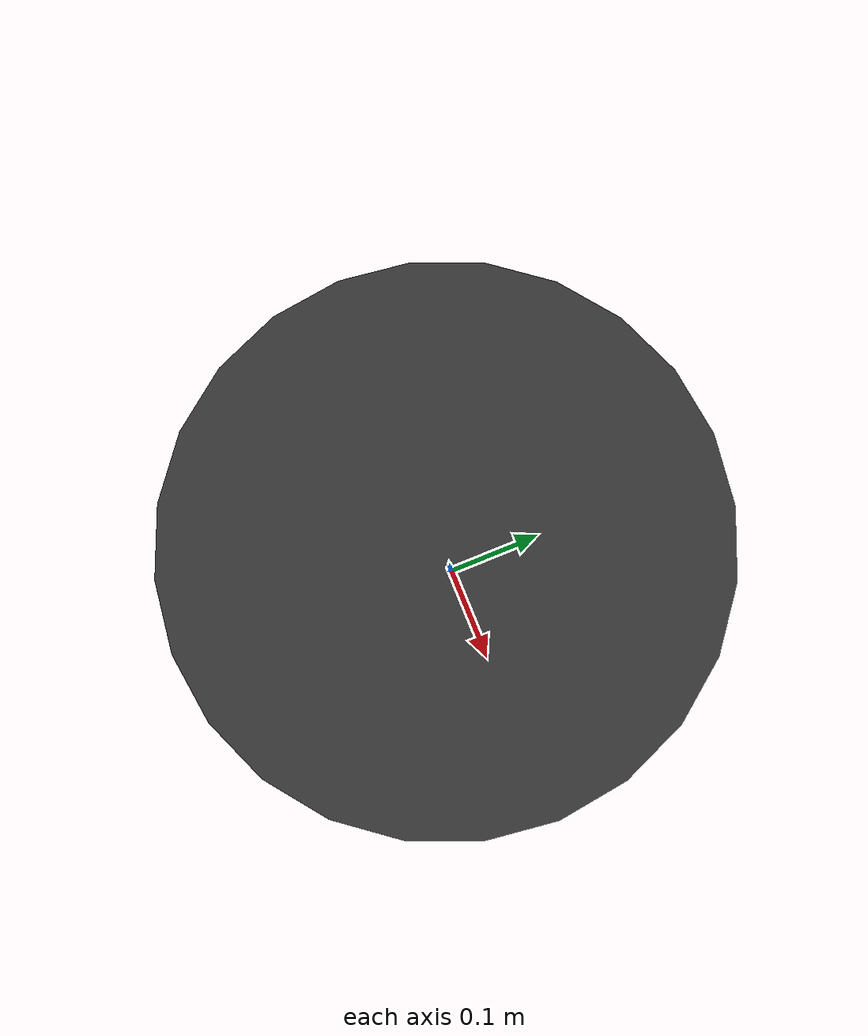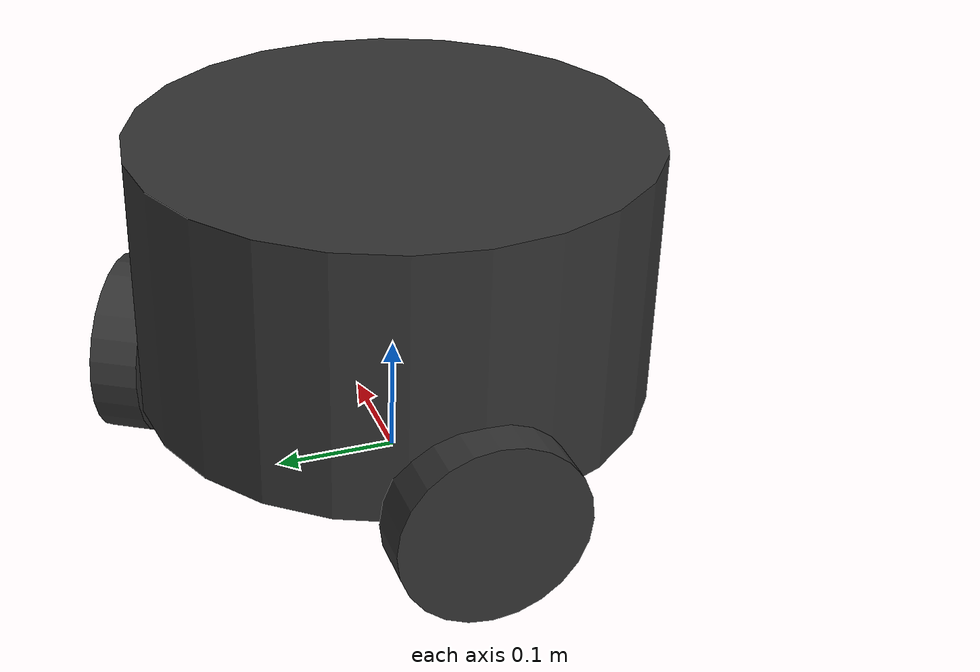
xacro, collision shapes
<?xml version="1.0"?>
<robot name="justina" xmlns:xacro="http://www.ros.org/wiki/xacro">
	<xacro:include filename="$(find knowledge)/hardware/justina.gazebo" />
	<!-- Import Rviz colors -->
	<xacro:include filename="$(find knowledge)/hardware/materials.xacro" />
	<xacro:include filename="$(find knowledge)/hardware/macros.xacro" />
	<xacro:include filename="$(find pincher_arm_description)/urdf/arm_hardware.xacro"/>

	<material name="White">
    	<color rgba="0.87 0.90 0.87 1.0"/>
  	</material>
  	<material name="Black">
    	<color rgba="0.08 0.08 0.08 1.0"/>
  	</material>
  	<material name="Gray">
    	<color rgba="0.2 0.2 0.21 1.0"/>
  	</material>
  	<material name="Green">
    	<color rgba="0.22 0.32 0.14 1.0"/>
  	</material>

	<xacro:property name="base_radius" value="0.21"/>
	<xacro:property name="base_height" value="0.2156"/>
	<xacro:property name="base_mass" value="2.0"/>
	<xacro:property name="wheel_radius" value="0.075"/>
	<xacro:property name="wheel_height" value="0.04"/>
	<xacro:property name="wheel_mass" value="0.52098"/>

	<link name="base_link"/>

	<joint name="hex_base_connect" type="fixed">
		<origin xyz="0 0 0" rpy="0 0 0" />
		<parent link="base_link"/>
		<child link="hex_base_link" />
	</joint>

	<link name="hex_base_link">
		<visual>
			<origin xyz="0.0 0.0 0.075" rpy="0.0 0 1.5708"/>
			<!-- origin xyz="0 0 0.1828" rpy="0 0 0"/ -->
			<geometry>
				<mesh filename="package://knowledge/hardware/stl/base/baseHex.dae"/>
				<!-- cylinder length="${base_height}" radius="${base_radius}"/ -->
			</geometry>
			<material name="grey"/>
		</visual>
		<collision>
			<origin xyz="0 0 0.1828" rpy="0 0 0"/>
			<geometry><cylinder length="${base_height}" radius="${base_radius}"/></geometry>
		</collision>
		<inertial>
			<origin xyz="0 0 0.1828" rpy="0 0 0"/>
			<mass value="${base_mass}"/>
			<xacro:cylinder_inertia m="${base_mass}" r="${base_radius}" h="${base_height}"/>
		</inertial>
	</link>
	<joint name="wheel_front_left_connect" type="continuous">
		<origin xyz="0.1091 0.189 0.075" rpy="1.57078 0 -3.67"/>
		<parent link="hex_base_link"/>
		<child link="wheel_front_left"/>
		<axis xyz="0 0 1"/>
	</joint>

	<link name="wheel_front_left">
		<visual>
			<origin xyz="0 0 0" rpy="0 3.1416 0"/>
			<geometry>
				<mesh filename="package://knowledge/hardware/stl/base/rueda.dae"/>
				<!-- cylinder length="${wheel_height}" radius="${wheel_radius}"/ -->
			</geometry>
			<material name="grey"/>
		</visual>
		<collision>
			<origin xyz="0 0 0" rpy="0 0 0"/>
			<geometry><cylinder length="${wheel_height}" radius="${wheel_radius}"/></geometry>
		</collision>
		<inertial>
			<origin xyz="0 0 0"/>
			<mass value="${wheel_mass}"/>
			<xacro:cylinder_inertia m="${wheel_mass}" r="${wheel_radius}" h="${wheel_height}"/>
		</inertial>
	</link>

	<joint name="wheel_back_connect" type="continuous">
		<origin xyz="-0.2182 0 0.075" rpy="1.57078 0 -1.5708"/>
		<parent link="hex_base_link"/>
		<child link="wheel_back"/>
		<axis xyz="0 0 1"/>
	</joint>

	<link name="wheel_back">
		<visual>
			<origin xyz="0 0 0" rpy="0 3.1416 0"/>
			<geometry>
				<mesh filename="package://knowledge/hardware/stl/base/rueda.dae"/>
				<!-- cylinder length="${wheel_height}" radius="${wheel_radius}"/ -->
			</geometry>
			<material name="grey"/>
		</visual>
		<collision>
			<origin xyz="0 0 0" rpy="0 0 0"/>
			<geometry><cylinder length="${wheel_height}" radius="${wheel_radius}"/></geometry>
		</collision>
		<inertial>
			<origin xyz="0 0 0" rpy="0 0 0"/>
			<mass value="${wheel_mass}"/>
			<xacro:cylinder_inertia m="${wheel_mass}" r="${wheel_radius}" h="${wheel_height}"/>
		</inertial>
	</link>

	<joint name="wheel_front_right_connect" type="continuous">
		<origin xyz="0.1091 -0.189 0.075" rpy="1.57078 0 3.67"/>
		<parent link="hex_base_link"/>
		<child link="wheel_front_right"/>
		<axis xyz="0 0 1"/>
	</joint>

	<link name="wheel_front_right">
		<visual>
			<origin xyz="0 0 0" rpy="0 0 0"/>
			<geometry>
				<mesh filename="package://knowledge/hardware/stl/base/rueda.dae"/>
				<!-- cylinder length="${wheel_height}" radius="${wheel_radius}"/ -->
			</geometry>
			<material name="grey"/>
		</visual>
		<collision>
			<origin xyz="0 0 0" rpy="0 0 0"/>
			<geometry><cylinder length="${wheel_height}" radius="${wheel_radius}"/></geometry>
		</collision>
		<inertial>
			<origin xyz="0 0 0" rpy="0 0 0"/>
			<mass value="${wheel_mass}"/>
			<xacro:cylinder_inertia m="${wheel_mass}" r="${wheel_radius}" h="${wheel_height}"/>
		</inertial>
	</link>

<xacro:macro name="pincher_arm" params="
      color:=Gray
      joints_vlimit:=1.571
      pan_llimit:=-2.617
      pan_ulimit:=2.617
      shoulder_llimit:=-2.09
      shoulder_ulimit:=2.09
      elbow_llimit:=-2.42
      elbow_ulimit:=2.42
      wrist_llimit:=-1.71
      wrist_ulimit:=1.79
      gripper_llimit:=-2.6
      gripper_ulimit:=0.0">

    <link name="arm_base_link"/>
    <joint name="base_to_arm" type="fixed">
	    <parent link="hex_base_link"/>
	    <child link="arm_base_link"/>
	    <origin rpy="0 0 0" xyz="0.15 0.0 0.97"/>
  	</joint>

    <!-- shoulder pan joint -->
    <xacro:dynamixel_AX12_fixed parent="arm_base_link" name="arm_shoulder_pan_servo">
      <origin xyz="0 0 0" rpy="${pi/2} 0 ${pi/2}"/>
    </xacro:dynamixel_AX12_fixed>

    <xacro:bioloid_F3_revolute parent="arm_shoulder_pan_servo_link" name="arm_shoulder_pan" color="${color}"
                               vlimit="${joints_vlimit}" llimit="${pan_llimit}" ulimit="${pan_ulimit}">
      <origin xyz="0 ${AX12_WIDTH/2} 0" rpy="${-pi/2} ${pi/2} ${pi}"/>
    </xacro:bioloid_F3_revolute>

    <!-- shoulder lift joint -->
    <xacro:dynamixel_AX12_fixed parent="arm_shoulder_pan_link" name="arm_shoulder_lift_servo">
      <origin xyz="0 0 ${-AX12_HEIGHT-F10_HEIGHT+0.001}" rpy="0 ${pi} 0"/>
    </xacro:dynamixel_AX12_fixed>

    <xacro:bioloid_F4_revolute parent="arm_shoulder_lift_servo_link" name="arm_shoulder_lift" color="${color}"
                               vlimit="${joints_vlimit}" llimit="${shoulder_llimit}" ulimit="${shoulder_ulimit}">
      <origin xyz="0 0 0" rpy="0 0 0"/>
    </xacro:bioloid_F4_revolute>

    <xacro:bioloid_F10_fixed parent="arm_shoulder_lift_link" name="arm_shoulder_F10_0" color="${color}">
      <origin xyz="0 0 ${F4_HEIGHT+F10_HEIGHT/2}" rpy="0 0 0"/>
    </xacro:bioloid_F10_fixed>

    <xacro:bioloid_F10_fixed parent="arm_shoulder_F10_0_link" name="arm_shoulder_F10_1" color="${color}">
      <origin xyz="0 0 ${F10_HEIGHT}" rpy="0 0 0"/>
    </xacro:bioloid_F10_fixed>

    <xacro:bioloid_F10_fixed parent="arm_shoulder_F10_1_link" name="arm_shoulder_F10_2" color="${color}">
      <origin xyz="0 0 ${F10_HEIGHT}" rpy="0 0 0"/>
    </xacro:bioloid_F10_fixed>

    <xacro:bioloid_F3_fixed parent="arm_shoulder_F10_2_link" name="arm_shoulder_F3_0" color="${color}">
      <origin xyz="0 0 ${F10_HEIGHT/2}" rpy="0 ${pi} 0"/>
    </xacro:bioloid_F3_fixed>

    <!-- elbow joint -->
    <xacro:dynamixel_AX12_fixed parent="arm_shoulder_F3_0_link" name="arm_elbow_flex_servo">
      <origin xyz="0 0 ${-AX12_HEIGHT-F10_HEIGHT+0.001}" rpy="0 ${pi} 0"/>
    </xacro:dynamixel_AX12_fixed>

    <xacro:bioloid_F4_revolute parent="arm_elbow_flex_servo_link" name="arm_elbow_flex" color="${color}"
                               vlimit="${joints_vlimit}" llimit="${elbow_llimit}" ulimit="${elbow_ulimit}">
      <origin xyz="0 0 0" rpy="0 0 0"/>
    </xacro:bioloid_F4_revolute>

    <xacro:bioloid_F10_fixed parent="arm_elbow_flex_link" name="arm_elbow_F10_0" color="${color}">
      <origin xyz="0 0 ${F4_HEIGHT+F10_HEIGHT/2}" rpy="0 0 0"/>
    </xacro:bioloid_F10_fixed>

    <xacro:bioloid_F10_fixed parent="arm_elbow_F10_0_link" name="arm_elbow_F10_1" color="${color}">
      <origin xyz="0 0 ${F10_HEIGHT}" rpy="0 0 0"/>
    </xacro:bioloid_F10_fixed>

    <xacro:bioloid_F10_fixed parent="arm_elbow_F10_1_link" name="arm_elbow_F10_2" color="${color}">
      <origin xyz="0 0 ${F10_HEIGHT}" rpy="0 0 0"/>
    </xacro:bioloid_F10_fixed>

    <xacro:bioloid_F3_fixed parent="arm_elbow_F10_2_link" name="arm_elbow_F3_0" color="${color}">
      <origin xyz="0 0 ${F10_HEIGHT/2}" rpy="0 ${pi} 0"/>
    </xacro:bioloid_F3_fixed>

    <!-- wrist joint -->
    <xacro:dynamixel_AX12_fixed parent="arm_elbow_F3_0_link" name="arm_wrist_flex_servo">
      <origin xyz="0 0 ${-AX12_HEIGHT-F10_HEIGHT+0.001}" rpy="0 ${pi} 0"/>
    </xacro:dynamixel_AX12_fixed>

    <xacro:bioloid_F2_revolute parent="arm_wrist_flex_servo_link" name="arm_wrist_flex" color="${color}"
                               vlimit="${joints_vlimit}" llimit="${wrist_llimit}" ulimit="${wrist_ulimit}">
      <origin xyz="0 0 0" rpy="0 0 0"/>
    </xacro:bioloid_F2_revolute>

    <xacro:bioloid_F3_fixed parent="arm_wrist_flex_link" name="arm_wrist_F3_0" color="${color}">
      <origin xyz="0 0 ${F2_HEIGHT}" rpy="0 ${pi} ${-pi}"/>
    </xacro:bioloid_F3_fixed>

    <!-- gripper joint -->
    <xacro:dynamixel_AX12_fixed parent="arm_wrist_F3_0_link" name="gripper_servo" >
      <origin xyz="0 0 ${-AX12_WIDTH/2}" rpy="${pi/2} ${pi} ${pi/2}"/>
    </xacro:dynamixel_AX12_fixed>

    <xacro:gripper_finger_base parent="gripper_servo_link" name="gripper_finger_base" color="${color}">
      <origin xyz="0  ${AX12_WIDTH/2} 0" rpy="${pi} 0 ${pi/2}"/>
    </xacro:gripper_finger_base>

    <link name="gripper_active_link"/>
    <joint name="gripper_joint" type="revolute">
      <origin xyz="0 0 0" rpy="0 0 0"/>
      <axis xyz="1 0 0"/>
      <limit effort="30" velocity="${joints_vlimit}" lower="${gripper_llimit}" upper="${gripper_ulimit}"/>
      <parent link="gripper_finger_base_link"/>
      <child link="gripper_active_link"/>
    </joint>

    <!-- Finger 1 -->
    <xacro:pincher_finger name="gripper_finger1" color="${color}" >
      <origin xyz="0 0.0115 0" rpy="${pi/2} 0 ${pi/2}"/>
    </xacro:pincher_finger>

    <joint name="gripper_finger1_joint" type="prismatic">
      <origin xyz="0.019 0 0" rpy="0 0 0"/>
      <axis xyz="0 1 0"/>
      <limit effort="30" velocity="0.01" lower="0.001" upper="0.0158"/>
      <parent link="gripper_finger_base_link"/>
      <child link="gripper_finger1_link"/>
    </joint>

    <!-- Finger 2 -->
    <xacro:pincher_finger name="gripper_finger2" color="${color}" >
      <origin xyz="0 0.0115 0" rpy="${pi/2} 0 ${pi/2}"/>
    </xacro:pincher_finger>

    <joint name="gripper_finger2_joint" type="prismatic">
      <origin xyz="0.019 0 0" rpy="${pi} 0 0"/>
      <axis xyz="0 1 0"/>
      <limit effort="30" velocity="0.01" lower="0.001" upper="0.0158"/>
      <parent link="gripper_finger_base_link"/>
      <child link="gripper_finger2_link"/>
    </joint>

    <!-- fake gripper joint -->
    <link name="gripper_fake_link"/>
    <joint name="gripper_fake_joint" type="revolute">
      <origin xyz="0.02 0 0" rpy="0 0 0"/>
      <parent link="gripper_finger_base_link"/>
      <child link="gripper_fake_link"/>
      <limit effort="30" velocity="1" lower="-3.14" upper="3.14"/>
      <axis xyz="1 0 0"/>
    </joint>

  </xacro:macro>

</robot>

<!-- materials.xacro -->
<robot xmlns:xacro="http://www.ros.org/wiki/xacro">

	<material name="black">
		<color rgba="0.0 0.0 0.0 1.0"/>
	</material>

	<material name="blue">
		<color rgba="0.0 0.0 0.8 1.0"/>
	</material>

	<material name="green">
		<color rgba="0.0 0.8 0.0 1.0"/>
	</material>

	<material name="grey">
		<color rgba="0.2 0.2 0.2 1.0"/>
	</material>

	<material name="orange">
		<color rgba="${255/255} ${108/255} ${10/255} 1.0"/>
	</material>

	<material name="brown">
		<color rgba="${222/255} ${207/255} ${195/255} 1.0"/>
	</material>

	<material name="red">
		<color rgba="0.8 0.0 0.0 1.0"/>
	</material>

	<material name="white">
		<color rgba="1.0 1.0 1.0 1.0"/>
	</material>

</robot>

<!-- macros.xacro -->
<robot xmlns:xacro="http://www.ros.org/wiki/xacro">
	<xacro:macro name="cylinder_inertia" params="m r h">
		<inertia  ixx="${m*(3*r*r+h*h)/12}" ixy = "0" ixz = "0"
			iyy="${m*(3*r*r+h*h)/12}" iyz = "0"
			izz="${m*r*r/2}"
			/>
	</xacro:macro>

	<xacro:macro name="box_inertia" params="m x y z">
		<inertia  ixx="${m*(y*y+z*z)/12}" ixy = "0" ixz = "0"
			iyy="${m*(x*x+z*z)/12}" iyz = "0"
			izz="${m*(x*x+z*z)/12}"
			/>
	</xacro:macro>

	<xacro:macro name="sphere_inertia" params="m r">
		<inertia  ixx="${2*m*r*r/5}" ixy = "0" ixz = "0"
			iyy="${2*m*r*r/5}" iyz = "0"
			izz="${2*m*r*r/5}"
			/>
	</xacro:macro>
</robot>
